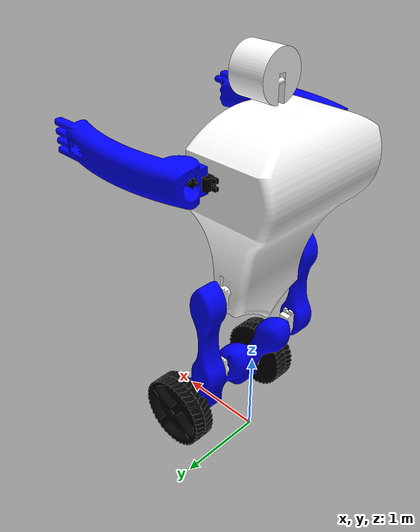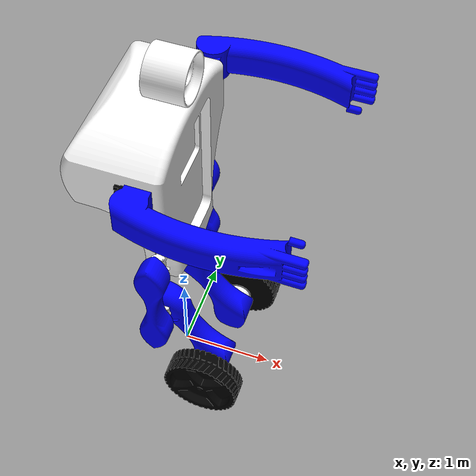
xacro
<?xml version="1.0"?>
<robot xmlns:xacro="http://www.ros.org/wiki/xacro"  name="robot">

    <link name = "world"/>

    <joint name = "world_joint" type = "fixed">
        <parent link = "world" />
        <child link = "chassis_link" />
        <origin xyz="0 0 4" rpy= "0 0 1.57"/>
    </joint>

    <link name="chassis_link">
        <visual>
            <geometry>
                <mesh filename="package://pet2/meshes/chassis_v2.stl" scale="0.1 0.1 0.1"/>
            </geometry>
            <material name="white">
                <color rgba="1 1 1 1"/>
            </material>
        </visual>
        <collision>
            <geometry>
                <mesh filename="package://pet2/meshes/chassis_v2.stl" scale="0.1 0.1 0.1"/>
            </geometry>
        </collision>
        <inertial>
            <mass value="1.0" />
            <inertia ixx="0.01" ixy="0" ixz="0" iyy="0.01" iyz="0" izz="0.01" />
        </inertial>
    </link>

    <joint name = "head_joint" type = "continuous">
        <parent link = "chassis_link" />
        <child link = "head_link" />
        <origin xyz="0 0 0" rpy= "1.57 -1.57 0"/>
        <axis xyz="1 0 0" />
        <limit effort="100" velocity="1.0" lower="-3.14" upper="3.14" />
    </joint>

    <link name="head_link">
        <visual>
            <geometry>
                <mesh filename="package://pet2/meshes/head_piece.stl" scale="0.1 0.1 0.1"/>
            </geometry>
            <material name="white">
                <color rgba="255 255 255 1"/>
            </material>
        </visual>
        <collision>
            <geometry>
                <mesh filename="package://pet2/meshes/head_piece.stl" scale="0.1 0.1 0.1"/>
            </geometry>
        </collision>
        <inertial>
            <mass value="1.0" />
            <inertia ixx="0.01" ixy="0" ixz="0" iyy="0.01" iyz="0" izz="0.01" />
        </inertial>
    </link>

    <joint name = "servo_ra_joint" type = "fixed">
        <parent link = "chassis_link" />
        <child link = "servo_ra_link" />
        <origin xyz="0.6 0.03 -0.45" rpy="1.57 3.14 1.57"/>
    </joint>

    <link name="servo_ra_link">
        <visual>
            <geometry>
                <mesh filename="package://pet2/meshes/servo_motor.stl" scale="0.1 0.1 0.1"/>
            </geometry>
            <material name="black">
                <color rgba="0 0 0 1"/>
            </material>
        </visual>
        <collision>
            <geometry>
                <mesh filename="package://pet2/meshes/servo_motor.stl" scale="0.1 0.1 0.1"/>
            </geometry>
        </collision>
        <inertial>
            <mass value="1.0" />
            <inertia ixx="0.01" ixy="0" ixz="0" iyy="0.01" iyz="0" izz="0.01" />
        </inertial>
    </link>

    <joint name = "servo_la_joint" type = "fixed">
        <parent link = "chassis_link" />
        <child link = "servo_la_link" />
        <origin xyz="-0.6 0.03 -0.45" rpy="-1.57 3.14 1.57"/>
    </joint>

    <link name="servo_la_link">
        <visual>
            <geometry>
                <mesh filename="package://pet2/meshes/servo_motor.stl" scale="0.1 0.1 0.1"/>
            </geometry>
            <material name="black">
                <color rgba="0 0 0 1"/>
            </material>
        </visual>
        <collision>
            <geometry>
                <mesh filename="package://pet2/meshes/servo_motor.stl" scale="0.1 0.1 0.1"/>
            </geometry>
        </collision>
        <inertial>
            <mass value="1.0" />
            <inertia ixx="0.01" ixy="0" ixz="0" iyy="0.01" iyz="0" izz="0.01" />
        </inertial>
    </link>

    <joint name = "r_arm_joint" type = "continuous">
        <parent link = "servo_ra_link" />
        <child link = "r_arm_link" />
        <origin xyz="0 0 0.2 " rpy="0 0 1.57"/>
        <axis xyz="0 0 1" />
        <limit effort="100" velocity="1.0" lower="-3.14" upper="3.14" />
    </joint>

    <link name="r_arm_link">
        <visual>
            <geometry>
                <mesh filename="package://pet2/meshes/upper_arm.stl" scale="0.1 0.1 0.1"/>
            </geometry>
            <material name="blue">
                <color rgba="0 0 1 1"/>
            </material>
        </visual>
        <collision>
            <geometry>
                <mesh filename="package://pet2/meshes/upper_arm.stl" scale="0.1 0.1 0.1"/>
            </geometry>
        </collision>
        <inertial>
            <mass value="1.0" />
            <inertia ixx="0.01" ixy="0" ixz="0" iyy="0.01" iyz="0" izz="0.01" />
        </inertial>
    </link>

    <joint name = "l_arm_joint" type = "continuous">
        <parent link = "servo_la_link" />
        <child link = "l_arm_link" />
        <origin xyz="0 0 0.2 " rpy="0 0 1.57"/>
        <axis xyz="0 0 1" />
        <limit effort="100" velocity="1.0" lower="-3.14" upper="3.14" />
    </joint>

    <link name="l_arm_link">
        <visual>
            <geometry>
                <mesh filename="package://pet2/meshes/upper_arm.stl" scale="0.1 0.1 0.1"/>
            </geometry>
            <material name="blue">
                <color rgba="0 0 1 1"/>
            </material>
        </visual>
        <collision>
            <geometry>
                <mesh filename="package://pet2/meshes/upper_arm.stl" scale="0.1 0.1 0.1"/>
            </geometry>
        </collision>
        <inertial>
            <mass value="1.0" />
            <inertia ixx="0.01" ixy="0" ixz="0" iyy="0.01" iyz="0" izz="0.01" />
        </inertial>
    </link>

    <joint name = "servo_ll_joint" type = "continuous">
        <parent link = "chassis_link" />
        <child link = "servo_ll_link" />
        <origin xyz="-0.8 0.025 -1.8 " rpy="0 -1.57 3.14"/>
        <axis xyz="0 0 1" />
        <limit effort="100" velocity="1.0" lower="-3.14" upper="3.14" />
    </joint>

    <link name="servo_ll_link">
        <visual>
            <geometry>
                <mesh filename="package://pet2/meshes/servo_motor.stl" scale="0.1 0.1 0.1"/>
            </geometry>
            <material name="black">
                <color rgba="1 1 1 1"/>
            </material>
        </visual>
        <collision>
            <geometry>
                <mesh filename="package://pet2/meshes/servo_motor.stl" scale="0.1 0.1 0.1"/>
            </geometry>
        </collision>
        <inertial>
            <mass value="1.0" />
            <inertia ixx="0.01" ixy="0" ixz="0" iyy="0.01" iyz="0" izz="0.01" />
        </inertial>
    </link>

    <joint name = "upper_limb_ll_joint" type = "fixed">
        <parent link = "servo_ll_link" />
        <child link = "upper_limb_ll_link" />
        <origin xyz="0 0 0.18" rpy="0 0 1.57"/>
    </joint>

    <link name="upper_limb_ll_link">
        <visual>
            <geometry>
                <mesh filename="package://pet2/meshes/upper_limb.stl" scale="0.1 0.1 0.1"/>
            </geometry>
            <material name="blue">
                <color rgba="0 0 1 1"/>
            </material>
        </visual>
        <collision>
            <geometry>
                <mesh filename="package://pet2/meshes/upper_limb.stl" scale="0.1 0.1 0.1"/>
            </geometry>
        </collision>
        <inertial>
            <mass value="1.0" />
            <inertia ixx="0.01" ixy="0" ixz="0" iyy="0.01" iyz="0" izz="0.01" />
        </inertial>
    </link>

    <joint name = "servo_ll2_joint" type = "fixed">
        <parent link = "upper_limb_ll_link" />
        <child link = "servo_ll2_link" />
        <origin xyz="0 1 -0.18" rpy="0 0 1.57"/>
    </joint>

    <link name="servo_ll2_link">
        <visual>
            <geometry>
                <mesh filename="package://pet2/meshes/servo_motor.stl" scale="0.1 0.1 0.1"/>
            </geometry>
            <material name="black">
                <color rgba="1 1 1 1"/>
            </material>
        </visual>
        <collision>
            <geometry>
                <mesh filename="package://pet2/meshes/servo_motor.stl" scale="0.1 0.1 0.1"/>
            </geometry>
        </collision>
        <inertial>
            <mass value="1.0" />
            <inertia ixx="0.01" ixy="0" ixz="0" iyy="0.01" iyz="0" izz="0.01" />
        </inertial>
    </link>

    <joint name = "lower_limb_ll_joint" type = "continuous">
        <parent link = "servo_ll2_link" />
        <child link = "lower_limb_ll_link" />
        <origin xyz="0 0 0.35" rpy="0 3.14 1"/>
        <axis xyz="0 0 1" />
        <limit effort="100" velocity="1.0" lower="-3.14" upper="3.14" />
    </joint>

    <link name="lower_limb_ll_link">
        <visual>
            <geometry>
                <mesh filename="package://pet2/meshes/lower_limb.stl" scale="0.1 0.1 0.1"/>
            </geometry>
            <material name="blue">
                <color rgba="0 0 1 1"/>
            </material>
        </visual>
        <collision>
            <geometry>
                <mesh filename="package://pet2/meshes/lower_limb.stl" scale="0.1 0.1 0.1"/>
            </geometry>
        </collision>
        <inertial>
            <mass value="1.0" />
            <inertia ixx="0.01" ixy="0" ixz="0" iyy="0.01" iyz="0" izz="0.01" />
        </inertial>
    </link>

    <joint name = "bldc_l_joint" type = "fixed">
        <parent link = "lower_limb_ll_link" />
        <child link = "bldc_l_link" />
        <origin xyz="0 -0.92 -0.16" rpy="0 0 0"/>
    </joint>

    <link name="bldc_l_link">
        <visual>
            <geometry>
                <mesh filename="package://pet2/meshes/bldc_motor.stl" scale="0.1 0.1 0.1"/>
            </geometry>
            <material name="white">
                <color rgba="1 1 1 1"/>
            </material>
        </visual>
        <collision>
            <geometry>
                <mesh filename="package://pet2/meshes/bldc_motor.stl" scale="0.1 0.1 0.1"/>
            </geometry>
        </collision>
        <inertial>
            <mass value="1.0" />
            <inertia ixx="0.01" ixy="0" ixz="0" iyy="0.01" iyz="0" izz="0.01" />
        </inertial>
    </link>

    <joint name = "wheel_l_joint" type = "continuous">
        <parent link = "bldc_l_link" />
        <child link = "wheel_l_link" />
        <origin xyz="0 0 0.3" rpy="0 0 0"/>
        <axis xyz="0 0 1" />
        <limit effort="100" velocity="1.0" lower="-3.14" upper="3.14" />
    </joint>

    <link name="wheel_l_link">
        <visual>
            <geometry>
                <mesh filename="package://pet2/meshes/wheel.stl" scale="0.1 0.1 0.1"/>
            </geometry>
            <material name="black">
                <color rgba="0 0 0 1"/>
            </material>
        </visual>
        <collision>
            <geometry>
                <mesh filename="package://pet2/meshes/wheel.stl" scale="0.1 0.1 0.1"/>
            </geometry>
        </collision>
        <inertial>
            <mass value="1.0" />
            <inertia ixx="0.01" ixy="0" ixz="0" iyy="0.01" iyz="0" izz="0.01" />
        </inertial>
    </link>

    <joint name = "servo_rl_joint" type = "continuous">
        <parent link = "chassis_link" />
        <child link = "servo_rl_link" />
        <origin xyz="0.8 0.025 -1.8 " rpy="0 -1.57 0"/>
        <axis xyz="0 0 1" />
        <limit effort="100" velocity="1.0" lower="-3.14" upper="3.14" />
    </joint>

    <link name="servo_rl_link">
        <visual>
            <geometry>
                <mesh filename="package://pet2/meshes/servo_motor.stl" scale="0.1 0.1 0.1"/>
            </geometry>
            <material name="black">
                <color rgba="1 1 1 1"/>
            </material>
        </visual>
        <collision>
            <geometry>
                <mesh filename="package://pet2/meshes/servo_motor.stl" scale="0.1 0.1 0.1"/>
            </geometry>
        </collision>
        <inertial>
            <mass value="1.0" />
            <inertia ixx="0.01" ixy="0" ixz="0" iyy="0.01" iyz="0" izz="0.01" />
        </inertial>
    </link>

    <joint name = "upper_limb_rl_joint" type = "fixed">
        <parent link = "servo_rl_link" />
        <child link = "upper_limb_rl_link" />
        <origin xyz="0 0 0.18" rpy="0 0 1.57"/>
    </joint>

    <link name="upper_limb_rl_link">
        <visual>
            <geometry>
                <mesh filename="package://pet2/meshes/upper_limb.stl" scale="0.1 0.1 0.1"/>
            </geometry>
            <material name="blue">
                <color rgba="0 0 1 1"/>
            </material>
        </visual>
        <collision>
            <geometry>
                <mesh filename="package://pet2/meshes/upper_limb.stl" scale="0.1 0.1 0.1"/>
            </geometry>
        </collision>
        <inertial>
            <mass value="1.0" />
            <inertia ixx="0.01" ixy="0" ixz="0" iyy="0.01" iyz="0" izz="0.01" />
        </inertial>
    </link>

    <joint name = "servo_rl2_joint" type = "fixed">
        <parent link = "upper_limb_rl_link" />
        <child link = "servo_rl2_link" />
        <origin xyz="0 1 -0.18" rpy="0 0 1.57"/>
    </joint>

    <link name="servo_rl2_link">
        <visual>
            <geometry>
                <mesh filename="package://pet2/meshes/servo_motor.stl" scale="0.1 0.1 0.1"/>
            </geometry>
            <material name="black">
                <color rgba="1 1 1 1"/>
            </material>
        </visual>
        <collision>
            <geometry>
                <mesh filename="package://pet2/meshes/servo_motor.stl" scale="0.1 0.1 0.1"/>
            </geometry>
        </collision>
        <inertial>
            <mass value="1.0" />
            <inertia ixx="0.01" ixy="0" ixz="0" iyy="0.01" iyz="0" izz="0.01" />
        </inertial>
    </link>

    <joint name = "lower_limb_rl_joint" type = "continuous">
        <parent link = "servo_rl2_link" />
        <child link = "lower_limb_rl_link" />
        <origin xyz="0 0 0.35" rpy="0 -3.14 2.14"/>
        <axis xyz="0 0 1" />
        <limit effort="100" velocity="1.0" lower="-3.14" upper="3.14" />
    </joint>

    <link name="lower_limb_rl_link">
        <visual>
            <geometry>
                <mesh filename="package://pet2/meshes/lower_limb.stl" scale="0.1 0.1 0.1"/>
            </geometry>
            <material name="blue">
                <color rgba="0 0 1 1"/>
            </material>
        </visual>
        <collision>
            <geometry>
                <mesh filename="package://pet2/meshes/lower_limb.stl" scale="0.1 0.1 0.1"/>
            </geometry>
        </collision>
        <inertial>
            <mass value="1.0" />
            <inertia ixx="0.01" ixy="0" ixz="0" iyy="0.01" iyz="0" izz="0.01" />
        </inertial>
    </link>

    <joint name = "bldc_r_joint" type = "fixed">
        <parent link = "lower_limb_rl_link" />
        <child link = "bldc_r_link" />
        <origin xyz="0 -0.92 -0.16" rpy="0 0 0"/>
    </joint>

    <link name="bldc_r_link">
        <visual>
            <geometry>
                <mesh filename="package://pet2/meshes/bldc_motor.stl" scale="0.1 0.1 0.1"/>
            </geometry>
            <material name="white">
                <color rgba="1 1 1 1"/>
            </material>
        </visual>
        <collision>
            <geometry>
                <mesh filename="package://pet2/meshes/bldc_motor.stl" scale="0.1 0.1 0.1"/>
            </geometry>
        </collision>
        <inertial>
            <mass value="1.0" />
            <inertia ixx="0.01" ixy="0" ixz="0" iyy="0.01" iyz="0" izz="0.01" />
        </inertial>
    </link>

    <joint name = "wheel_r_joint" type = "continuous">
        <parent link = "bldc_r_link" />
        <child link = "wheel_r_link" />
        <origin xyz="0 0 0.3" rpy="0 0 0"/>
        <axis xyz="0 0 1" />
        <limit effort="100" velocity="1.0" lower="-3.14" upper="3.14" />
    </joint>

    <link name="wheel_r_link">
        <visual>
            <geometry>
                <mesh filename="package://pet2/meshes/wheel.stl" scale="0.1 0.1 0.1"/>
            </geometry>
            <material name="black">
                <color rgba="0 0 0 1"/>
            </material>
        </visual>
        <collision>
            <geometry>
                <mesh filename="package://pet2/meshes/wheel.stl" scale="0.1 0.1 0.1"/>
            </geometry>
        </collision>
        <inertial>
            <mass value="1.0" />
            <inertia ixx="0.01" ixy="0" ixz="0" iyy="0.01" iyz="0" izz="0.01" />
        </inertial>
    </link>

</robot>
